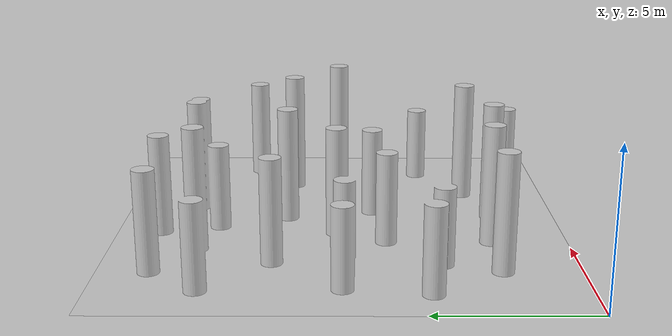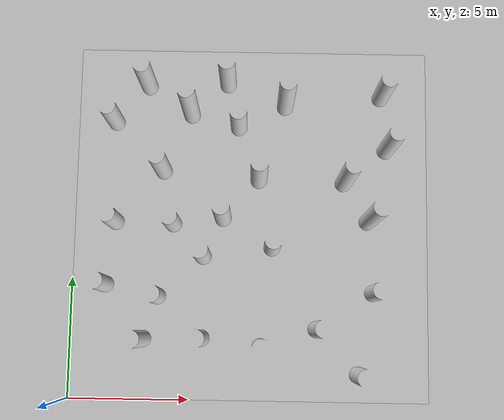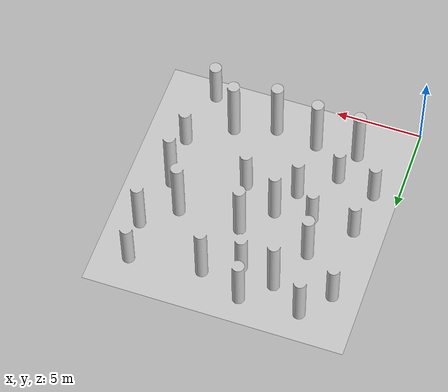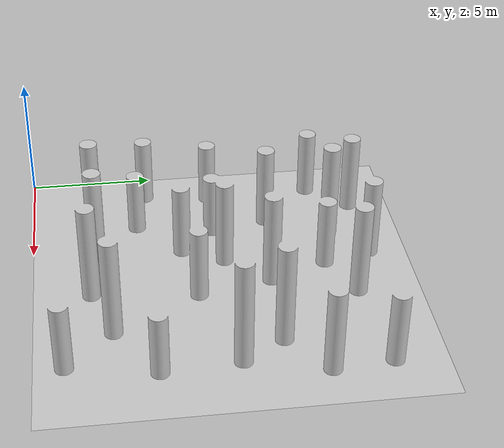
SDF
<?xml version="1.0" ?>
<sdf version="1.9">
  <model name="world_25_15">
    <static>true</static>
    <link name="link">
      <collision name="collision">
        <geometry>
          <mesh>
            <uri>model://world_25_15/meshes/world_25_15.stl</uri>
          </mesh>
        </geometry>
      </collision>
      <visual name="visual">
        <geometry>
          <mesh>
            <uri>model://world_25_15/meshes/world_25_15.stl</uri>
          </mesh>
        </geometry>
        <material>
            <ambient>0.8 0.8 0.8 1</ambient>
            <diffuse>0.8 0.8 0.8 1</diffuse>
            <specular>0.8 0.8 0.8 1</specular>
        </material>
      </visual>
    </link>
  </model>
</sdf>
